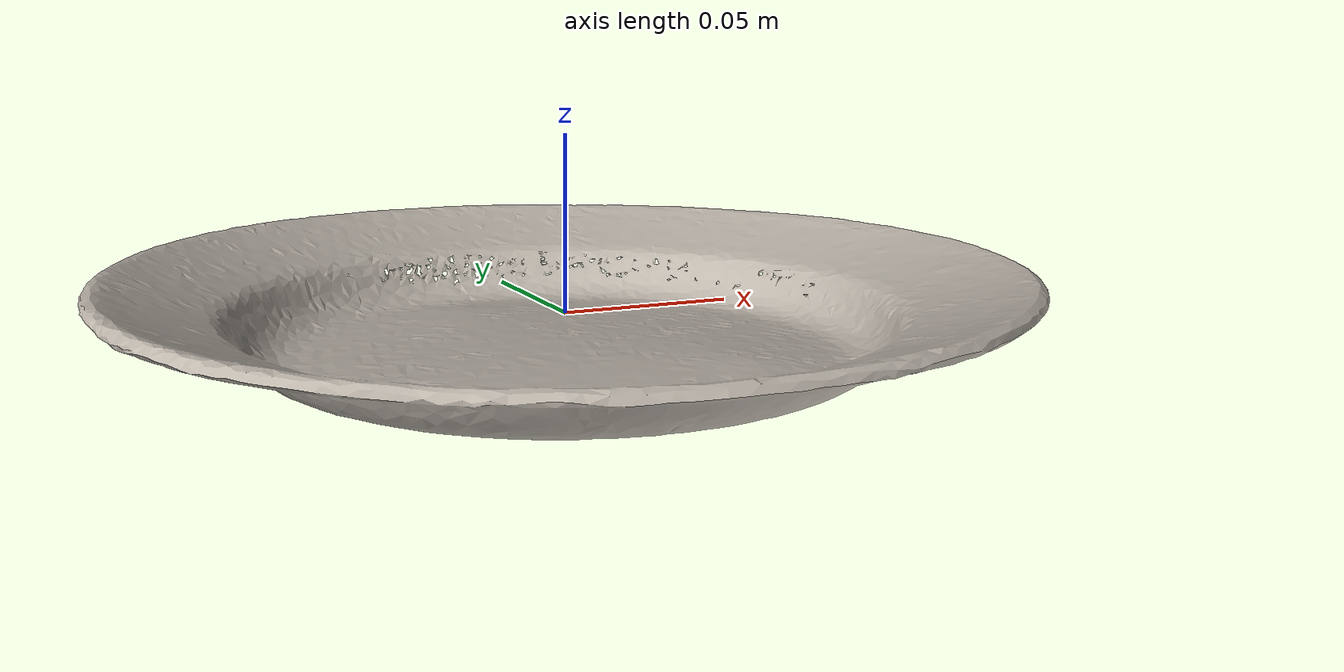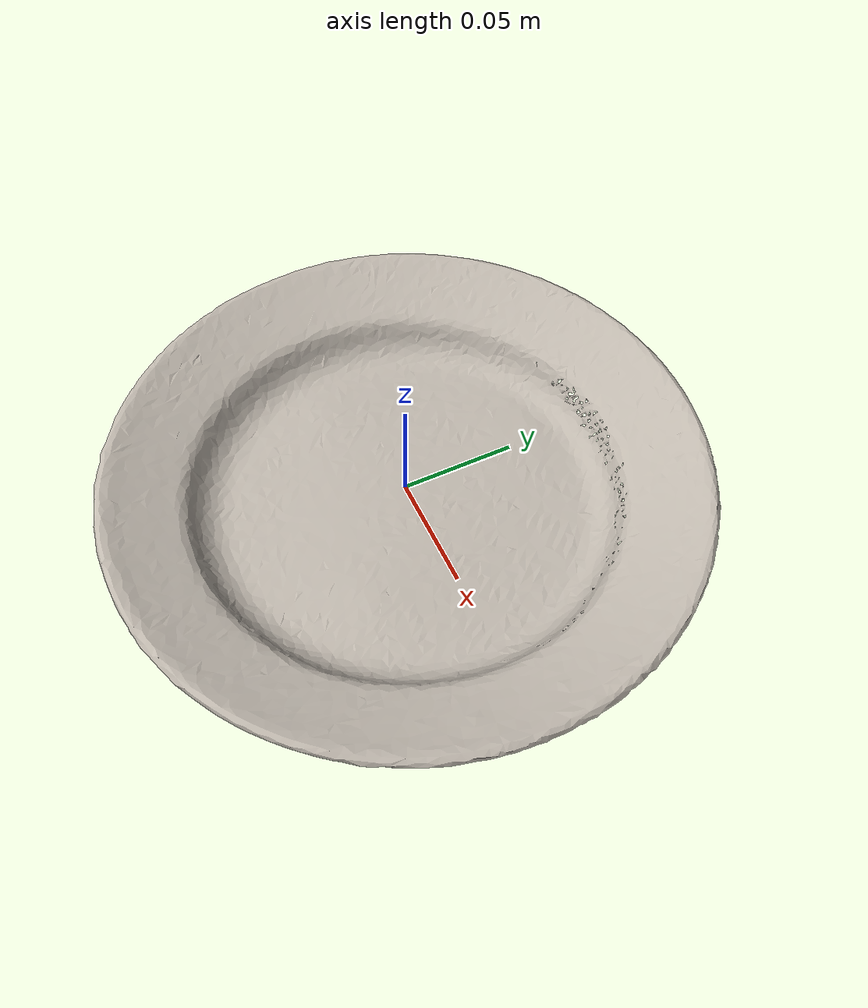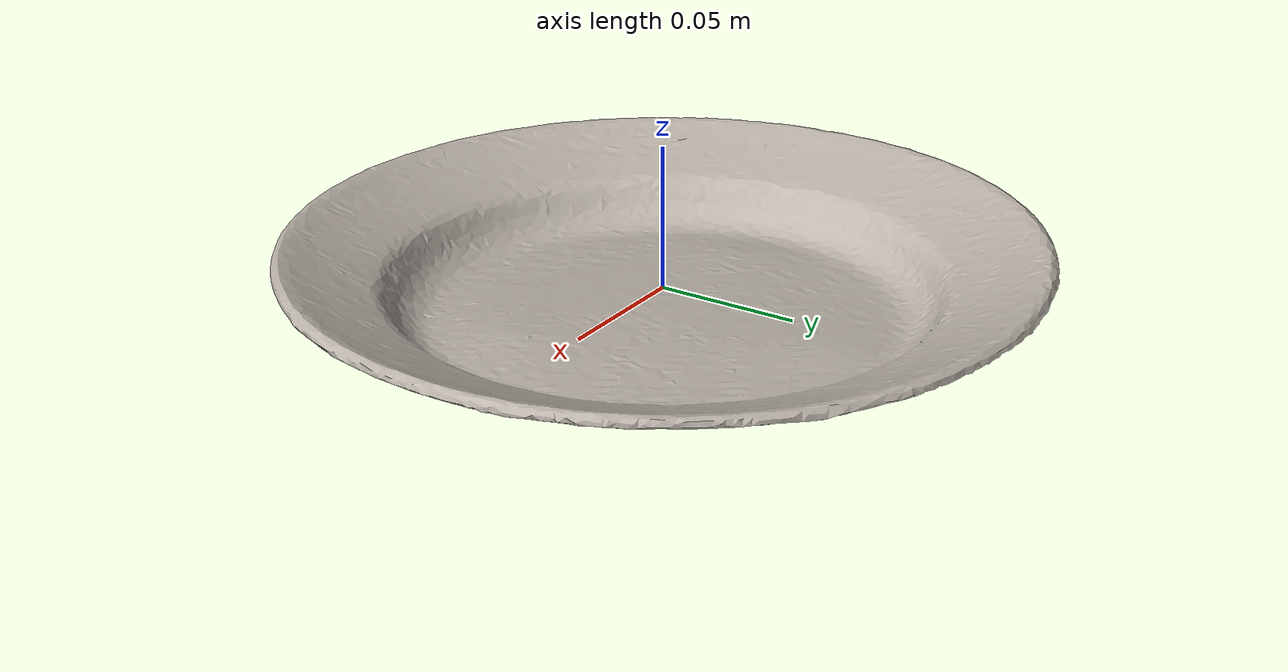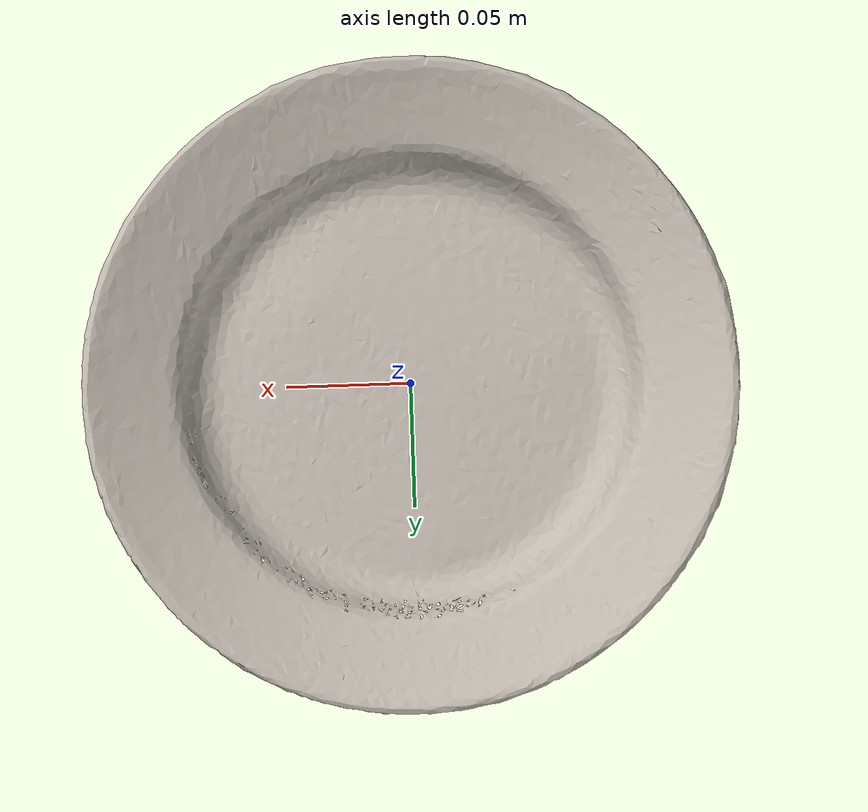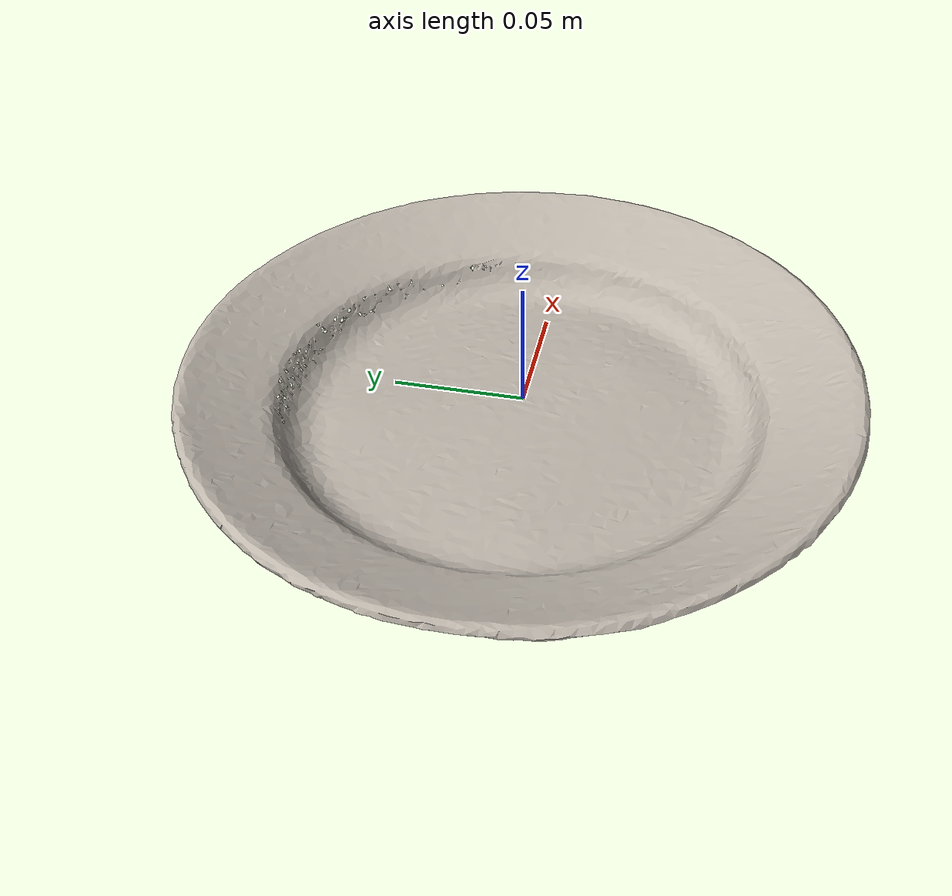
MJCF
<mujoco model="plate_ycb">
  <default>
    <default class="visual">
      <geom group="1" type="mesh" contype="0" conaffinity="0"/>
    </default>
    <default class="collision">
      <geom group="0" type="mesh"/>
    </default>
  </default>
  <asset>
    <texture type="2d" name="plate_ycb" file="plate_ycb.png"/>
    <material name="plate_ycb" texture="plate_ycb" specular="0.4000000000000001" shininess="0.001"/>
    <mesh name="plate_ycb" file="plate_ycb.obj"/>
  </asset>
  <worldbody>
    <body>
    <body name="object">
      <geom material="plate_ycb" mesh="plate_ycb" class="visual"/>
      <geom mesh="plate_ycb" class="collision"/>
    </body>
      <site rgba="0 0 0 0" size="0.005" pos="0 0 -0.04" name="bottom_site" />
      <site rgba="0 0 0 0" size="0.005" pos="0 0 0.04" name="top_site" />
      <site rgba="0 0 0 0" size="0.005" pos="0.005 0.005 0" name="horizontal_radius_site" />
   </body>
  </worldbody>
</mujoco>
